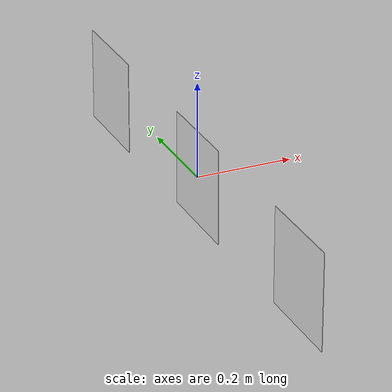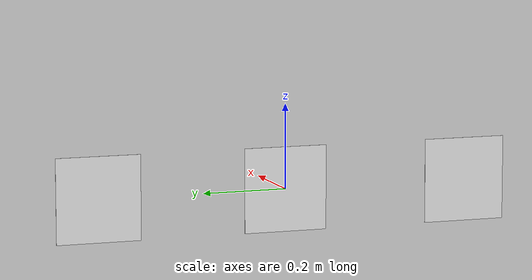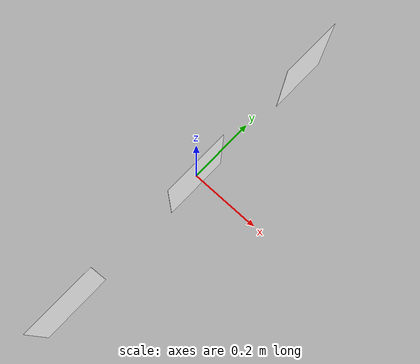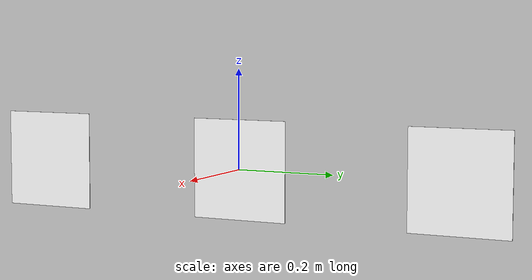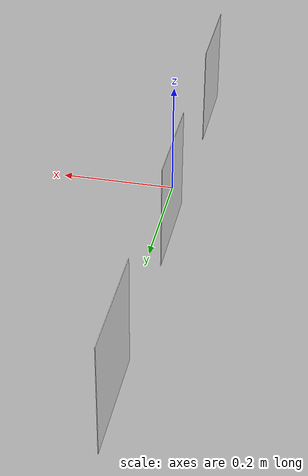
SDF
<?xml version="1.0"?>
<sdf version="1.9">
  <model name="apriltag_dock">
    <static>true</static>
    <link name="link">
      <visual name="visual_tag0">
        <pose>0 -0.45 0 0 0 0</pose>
        <cast_shadows>false</cast_shadows>
        <geometry>
          <box>
            <size>0.001 0.20 0.20</size>
          </box>
        </geometry>
        <material>
          <ambient>1 1 1 1</ambient>
          <diffuse>1 1 1 1</diffuse>
          <specular>0 0 0 0</specular>
          <pbr>
            <metal>
              <albedo_map>model://apriltag_dock/materials/textures/apriltag_36h11_id0.png</albedo_map>
              <metalness>0.0</metalness>
              <roughness>1.0</roughness>
            </metal>
          </pbr>
        </material>
      </visual>
      <visual name="visual_tag1">
        <pose>0 0 0 0 0 0</pose>
        <cast_shadows>false</cast_shadows>
        <geometry>
          <box>
            <size>0.001 0.20 0.20</size>
          </box>
        </geometry>
        <material>
          <ambient>1 1 1 1</ambient>
          <diffuse>1 1 1 1</diffuse>
          <specular>0 0 0 0</specular>
          <pbr>
            <metal>
              <albedo_map>model://apriltag_dock/materials/textures/apriltag_36h11_id1.png</albedo_map>
              <metalness>0.0</metalness>
              <roughness>1.0</roughness>
            </metal>
          </pbr>
        </material>
      </visual>
      <visual name="visual_tag2">
        <pose>0 0.45 0 0 0 0</pose>
        <cast_shadows>false</cast_shadows>
        <geometry>
          <box>
            <size>0.001 0.20 0.20</size>
          </box>
        </geometry>
        <material>
          <ambient>1 1 1 1</ambient>
          <diffuse>1 1 1 1</diffuse>
          <specular>0 0 0 0</specular>
          <pbr>
            <metal>
              <albedo_map>model://apriltag_dock/materials/textures/apriltag_36h11_id2.png</albedo_map>
              <metalness>0.0</metalness>
              <roughness>1.0</roughness>
            </metal>
          </pbr>
        </material>
      </visual>
      <collision name="collision">
        <geometry>
          <box>
            <size>0.001 1.10 0.20</size>
          </box>
        </geometry>
      </collision>
    </link>
  </model>
</sdf>
